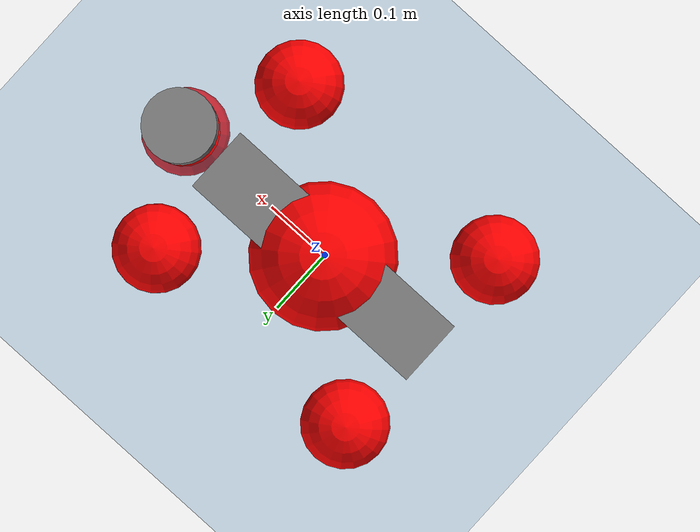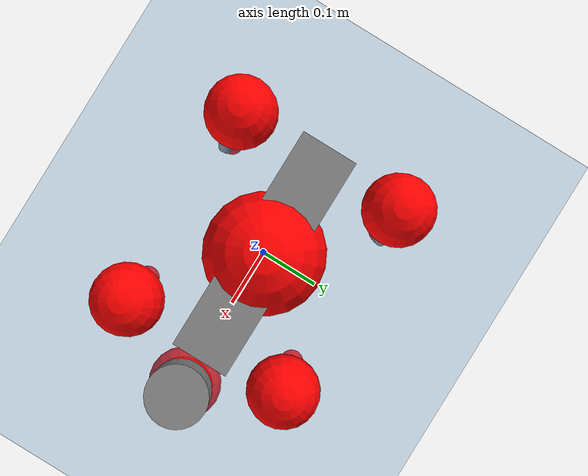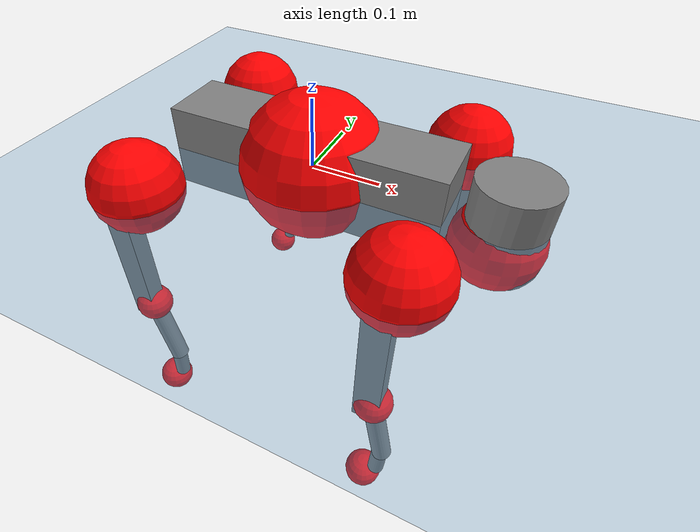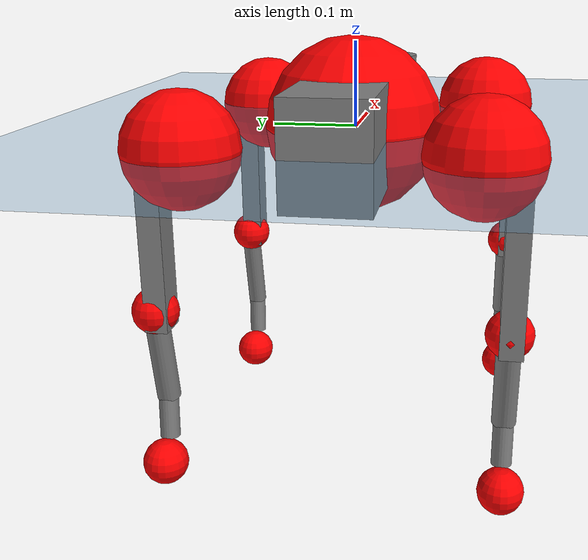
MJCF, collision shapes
<mujoco model="go2">
  <compiler angle="radian" assetdir="assets" balanceinertia="true" inertiafromgeom="false"/>

  <option timestep="0.005" density="1.2" viscosity="2e-05"/>

  <size nkey="1"/>

  <visual>
    <quality shadowsize="8192"/>
    <map shadowclip="0.5"/>
  </visual>

  <default>
    <default class="/">
      <geom contype="0" conaffinity="0" group="1" solref="-1000 -80"/>
      <site size="0.01 0.005 0.005" group="5"/>
      <general forcelimited="true" biastype="affine" gainprm="20" biasprm="0 -20 -0.5"/>
      <default class="go2">
        <joint armature="0.01" damping="0.01" frictionloss="0.2"/>
        <geom condim="1" margin="0.001"/>
        <default class="visual">
          <geom type="mesh" group="2"/>
        </default>
        <default class="collision">
          <geom group="3"/>
          <default class="foot">
            <geom size="0.022 0 0" condim="6" priority="1" friction="0.8 0.02 0.01" solimp="0.015 1 0.022"/>
          </default>
        </default>
        <default class="reward_collision_sphere">
          <geom group="5" rgba="1 0 0 1"/>
        </default>
      </default>
    </default>
  </default>

  <asset>
    <texture type="skybox" colorspace="auto" name="//unnamed_texture_0" builtin="gradient" rgb1="0.95 0.95 0.95" rgb2="0.95 0.95 0.95" width="100" height="600"/>
    <texture type="2d" colorspace="auto" name="texplane" builtin="checker" rgb1="0.345 0.575 0.748" rgb2="0.345 0.575 0.748" markrgb="1 1 1" width="512" height="512"/>
    <material name="MatPlane" class="/" texture="texplane" texuniform="true" texrepeat="2 2" specular="0.9"/>
    <material name="metal" class="/" rgba="0.9 0.95 0.95 1"/>
    <material name="black" class="/" rgba="0 0 0 1"/>
    <material name="white" class="/"/>
    <material name="gray" class="/" rgba="0.671705 0.692426 0.77427 1"/>
    <mesh name="base_0" class="/" file="base_0.obj"/>
    <mesh name="base_1" class="/" file="base_1.obj"/>
    <mesh name="base_2" class="/" file="base_2.obj"/>
    <mesh name="base_3" class="/" file="base_3.obj"/>
    <mesh name="base_4" class="/" file="base_4.obj"/>
    <mesh name="hip_0" class="/" file="hip_0.obj"/>
    <mesh name="hip_1" class="/" file="hip_1.obj"/>
    <mesh name="thigh_0" class="/" file="thigh_0.obj"/>
    <mesh name="thigh_1" class="/" file="thigh_1.obj"/>
    <mesh name="thigh_mirror_0" class="/" file="thigh_mirror_0.obj"/>
    <mesh name="thigh_mirror_1" class="/" file="thigh_mirror_1.obj"/>
    <mesh name="calf_0" class="/" file="calf_0.obj"/>
    <mesh name="calf_1" class="/" file="calf_1.obj"/>
    <mesh name="calf_mirror_0" class="/" file="calf_mirror_0.obj"/>
    <mesh name="calf_mirror_1" class="/" file="calf_mirror_1.obj"/>
    <mesh name="foot" class="/" file="foot.obj"/>
  </asset>

  <worldbody>
    <geom name="floor" class="/" size="100 100 0.125" type="plane" group="0" material="MatPlane"/>
    <light name="toplight_shadow" class="/" pos="0 0 5" dir="0.0990148 0.0990148 -0.990148" type="directional" ambient="0.04 0.04 0.04" diffuse="0.55 0.55 0.55" specular="0.12 0.12 0.12"/>
    <light name="toplight_fill" class="/" pos="0 0 5" dir="0.0990148 0.0990148 -0.990148" type="directional" castshadow="false" ambient="0.04 0.04 0.04" diffuse="0.3 0.3 0.3" specular="0.08 0.08 0.08"/>
    <body name="trunk" childclass="go2" pos="0.000728768 0.00279771 0.00187659" quat="1 4.40547e-05 1.23251e-05 5.59714e-05">
      <inertial pos="0.0214382 0.00338363 -0.0043515" quat="0.0335451 0.71275 -0.012771 0.7005" mass="8.29487" diaginertia="0.0786224 0.412356 0.0137613"/>
      <joint name="//unnamed_joint_0" type="free" armature="0" damping="0" frictionloss="0"/>
      <geom name="//unnamed_geom_1" class="visual" material="black" mesh="base_0"/>
      <geom name="//unnamed_geom_2" class="visual" material="black" mesh="base_1"/>
      <geom name="//unnamed_geom_3" class="visual" material="black" mesh="base_2"/>
      <geom name="//unnamed_geom_4" class="visual" material="white" mesh="base_3"/>
      <geom name="//unnamed_geom_5" class="visual" material="gray" mesh="base_4"/>
      <geom name="trunk_1" class="collision" size="0.198708 0.0493864 0.0602145" type="box"/>
      <geom name="trunk_2" class="collision" size="0.0528197 0.0475377" pos="0.268411 0 0.0089052" type="cylinder"/>
      <geom name="trunk_3" class="collision" size="0.0496505" pos="0.275945 0 -0.0534312"/>
      <geom name="//unnamed_geom_9" class="reward_collision_sphere" size="0.105639"/>
      <geom name="//unnamed_geom_10" class="reward_collision_sphere" size="0.0633836" pos="0.263702 0 -0.0400734"/>
      <site name="imu" pos="-0.0365614 -0.00226737 0.0516025" size="0.0105639"/>
      <camera name="track" pos="0 -2.67374 0" quat="0.707107 0.707107 0 0" mode="trackcom"/>
      <camera name="ego_camera" pos="0.293839 0 0.0400734" quat="-0.5 -0.5 0.5 0.5"/>
      <body name="FL_hip" pos="0.180658 0.0553088 -0.0050042" quat="0.999999 0.000807229 0.000651285 -0.00126817">
        <inertial pos="-0.0071404 0.00285507 -0.000313909" quat="0.49009 0.498575 0.505435 0.505737" mass="0.821684" diaginertia="0.000655434 0.00270862 0.000264199"/>
        <joint name="FL_hip_joint" pos="0 0 0" axis="0.999985 0.00319147 -0.00435809" range="-1.18901 1.04683" armature="0.00998343" damping="0.0230407" frictionloss="0.195018"/>
        <geom name="//unnamed_geom_11" class="visual" material="metal" mesh="hip_0"/>
        <geom name="//unnamed_geom_12" class="visual" material="gray" mesh="hip_1"/>
        <geom name="//unnamed_geom_13" class="collision" size="0.0485941 0.0211279" pos="0 0.10695 0" quat="0.707107 0.707107 0 0" type="cylinder"/>
        <geom name="//unnamed_geom_14" class="reward_collision_sphere" size="0.0633836" pos="0 0.0935808 0"/>
        <body name="FL_thigh" pos="0.0001989 0.120881 -0.0018263" quat="1 -0.000624154 0.000265076 0.000698089">
          <inertial pos="-0.0054516 -0.0306162 -0.0266744" quat="0.822662 0.102328 -0.0234786 0.558753" mass="1.35976" diaginertia="0.00458271 0.0252018 0.000487747"/>
          <joint name="FL_thigh_joint" pos="0 0 0" axis="0.00980737 0.999891 -0.011042" range="-1.56329 3.38539" armature="0.00877871" damping="0.0217444" frictionloss="0.225417"/>
          <geom name="//unnamed_geom_15" class="visual" material="metal" mesh="thigh_0"/>
          <geom name="//unnamed_geom_16" class="visual" material="gray" mesh="thigh_1"/>
          <geom name="//unnamed_geom_17" class="collision" size="0.112506 0.0129408 0.0179587" pos="0 0 -0.0948403" quat="0.707107 0 0.707107 0" type="box"/>
          <body name="FL_calf" pos="-0.00274096 0.00512026 -0.190891" quat="1 -2.99848e-05 2.61257e-05 2.06727e-05">
            <inertial pos="0.00458233 -0.000578402 -0.119485" quat="0.710944 0.00389002 -0.0073714 0.703199" mass="0.274333" diaginertia="0.00113016 0.005763 3.16767e-05"/>
            <joint name="FL_calf_joint" pos="0 0 0" axis="-0.000150964 1 0.000155327" range="-2.60031 -0.846566" armature="0.0111759" damping="0.0104756" frictionloss="0.216618"/>
            <geom name="//unnamed_geom_18" class="visual" material="gray" mesh="calf_0"/>
            <geom name="//unnamed_geom_19" class="visual" material="black" mesh="calf_1"/>
            <geom name="FL_calf0" class="collision" size="0.0126767 0.0633836" pos="0.00753434 0 -0.0534312" quat="0.994493 0 -0.104807 0" type="cylinder"/>
            <geom name="//unnamed_geom_21" class="collision" size="0.0116203 0.0343328" pos="0.0188359 0 -0.131797" quat="0.999688 0 0.0249974 0" type="cylinder"/>
            <geom name="//unnamed_geom_22" class="visual" pos="0 0 -0.189681" quat="1 0 0 0" material="black" mesh="foot"/>
            <geom name="FL_foot" class="foot" size="0.0209943" pos="-0.00188359 0 -0.189681"/>
            <geom name="//unnamed_geom_24" class="reward_collision_sphere" size="0.0264098"/>
            <geom name="//unnamed_geom_25" class="reward_collision_sphere" size="0.0264098" pos="-0.00188359 0 -0.189681"/>
            <site name="FL_foot" class="foot" pos="-0.00188359 0 -0.189681" size="0.0105639"/>
          </body>
        </body>
      </body>
      <body name="FR_hip" pos="0.18621 -0.0622332 0.000264668" quat="1 -0.00012142 -5.96165e-05 -8.76249e-05">
        <inertial pos="-0.00637119 -0.000304528 0.0017987" quat="0.50338 0.502288 0.496075 0.498222" mass="0.860351" diaginertia="0.000654389 0.00283426 0.000264157"/>
        <joint name="FR_hip_joint" pos="0 0 0" axis="0.999975 -0.00235084 0.00666875" range="-1.04576 1.02054" armature="0.0115603" damping="0.0150553" frictionloss="0.227351"/>
        <geom name="//unnamed_geom_26" class="visual" pos="0 3.88841e-09 1.66782e-07" quat="4.63268e-05 1 0 0" material="metal" mesh="hip_0"/>
        <geom name="//unnamed_geom_27" class="visual" pos="0 6.30358e-09 -4.12516e-07" quat="4.63268e-05 1 0 0" material="gray" mesh="hip_1"/>
        <geom name="//unnamed_geom_28" class="collision" size="0.0485941 0.0211279" pos="0 -0.10695 0" quat="0.707107 0.707107 0 0" type="cylinder"/>
        <geom name="//unnamed_geom_29" class="reward_collision_sphere" size="0.0633836" pos="0 -0.0935808 0"/>
        <body name="FR_thigh" pos="-0.00539169 -0.134366 -0.00676726" quat="1 -2.58711e-06 0.000174746 -2.87237e-05">
          <inertial pos="-0.00423259 0.0363602 -0.0304059" quat="0.551663 -0.0162448 0.0860518 0.829457" mass="1.2656" diaginertia="0.00430459 0.023895 0.000463152"/>
          <joint name="FR_thigh_joint" pos="0 0 0" axis="0.0094803 -0.999952 0.00266149" range="-3.3808 1.57373" armature="0.0116362" damping="0.0204786" frictionloss="0.210464"/>
          <geom name="//unnamed_geom_30" class="visual" material="metal" mesh="thigh_mirror_0"/>
          <geom name="//unnamed_geom_31" class="visual" material="gray" mesh="thigh_mirror_1"/>
          <geom name="//unnamed_geom_32" class="collision" size="0.112506 0.0129408 0.0179587" pos="0 0 -0.0948403" quat="0.707107 0 0.707107 0" type="box"/>
          <body name="FR_calf" pos="0.00531541 0.00149669 -0.188476" quat="0.999998 -0.000519855 -0.000657715 0.00184491">
            <inertial pos="0.00718334 0.000968426 -0.127659" quat="0.7038 -0.00846006 0.00402705 0.710336" mass="0.29226" diaginertia="0.00114014 0.0062177 3.05391e-05"/>
            <joint name="FR_calf_joint" pos="0 0 0" axis="0.0158209 -0.999507 -0.027106" stiffness="0.0102813" range="0.885823 2.73896" armature="0.00799181" damping="0" frictionloss="0.252524"/>
            <geom name="//unnamed_geom_33" class="visual" material="gray" mesh="calf_mirror_0"/>
            <geom name="//unnamed_geom_34" class="visual" material="black" mesh="calf_mirror_1"/>
            <geom name="FR_calf0" class="collision" size="0.0137331 0.0633836" pos="0.00941793 0 -0.0534312" quat="0.995004 0 -0.0998334 0" type="cylinder"/>
            <geom name="//unnamed_geom_36" class="collision" size="0.0116203 0.0343328" pos="0.0188359 0 -0.131797" quat="0.999688 0 0.0249974 0" type="cylinder"/>
            <geom name="//unnamed_geom_37" class="visual" pos="0 0 -0.189681" quat="1 0 0 0" material="black" mesh="foot"/>
            <geom name="FR_foot" class="foot" size="0.0219772" pos="-0.00188359 0 -0.189681"/>
            <geom name="//unnamed_geom_39" class="reward_collision_sphere" size="0.0264098"/>
            <geom name="//unnamed_geom_40" class="reward_collision_sphere" size="0.0264098" pos="-0.00188359 0 -0.189681"/>
            <site name="FR_foot" class="foot" pos="-0.00188359 0 -0.189681" size="0.0105639"/>
          </body>
        </body>
      </body>
      <body name="RL_hip" pos="-0.180344 0.0600696 0.00127123" quat="1 0.000431065 -0.000125679 0.000370293">
        <inertial pos="0.00428564 0.00605083 -0.000480311" quat="0.508694 0.497862 0.501818 0.491471" mass="0.827941" diaginertia="0.000656401 0.00258242 0.000273988"/>
        <joint name="RL_hip_joint" pos="0 0 0" axis="-0.999998 0.00208922 4.87873e-05" range="-1.00198 1.02795" armature="0.0101632" damping="0.00638001" frictionloss="0.236271"/>
        <geom name="//unnamed_geom_41" class="visual" pos="-4.46674e-10 0 -8.75583e-08" quat="4.63268e-05 0 1 0" material="metal" mesh="hip_0"/>
        <geom name="//unnamed_geom_42" class="visual" pos="-7.24111e-10 0 -7.76517e-08" quat="4.63268e-05 0 1 0" material="gray" mesh="hip_1"/>
        <geom name="//unnamed_geom_43" class="collision" size="0.0485941 0.0211279" pos="0 0.10695 0" quat="0.707107 0.707107 0 0" type="cylinder"/>
        <geom name="//unnamed_geom_44" class="reward_collision_sphere" size="0.0633836" pos="0 0.0935808 0"/>
        <body name="RL_thigh" pos="0.00128367 0.12829 0.00592632" quat="0.999999 0.000908677 4.12327e-05 -0.00079477">
          <inertial pos="-0.00401343 -0.0316568 -0.0236377" quat="0.829008 0.0876218 -0.0198599 0.551973" mass="1.26131" diaginertia="0.00436392 0.0256556 0.000488563"/>
          <joint name="RL_thigh_joint" pos="0 0 0" axis="-0.0223966 0.99971 0.00884361" range="-0.468879 4.51924" armature="0.00996832" damping="0.0243991" frictionloss="0.191563"/>
          <geom name="//unnamed_geom_45" class="visual" material="metal" mesh="thigh_0"/>
          <geom name="//unnamed_geom_46" class="visual" material="gray" mesh="thigh_1"/>
          <geom name="//unnamed_geom_47" class="collision" size="0.112506 0.0129408 0.0179587" pos="0 0 -0.0948403" quat="0.707107 0 0.707107 0" type="box"/>
          <body name="RL_calf" pos="0.00221317 0.00677 -0.188918" quat="0.999999 0.000302121 0.000915712 -0.00029664">
            <inertial pos="0.00400266 -0.00135816 -0.128257" quat="0.714598 0.00192011 -0.00730026 0.699494" mass="0.278424" diaginertia="0.00103606 0.00608672 2.93016e-05"/>
            <joint name="RL_calf_joint" pos="0 0 0" axis="-0.00304168 0.999945 0.0100029" range="-2.85043 -0.785244" armature="0.0107694" damping="0.0144055" frictionloss="0.211866"/>
            <geom name="//unnamed_geom_48" class="visual" material="gray" mesh="calf_0"/>
            <geom name="//unnamed_geom_49" class="visual" material="black" mesh="calf_1"/>
            <geom name="RL_calf0" class="collision" size="0.0137331 0.0633836" pos="0.00941793 0 -0.0534312" quat="0.995004 0 -0.0998334 0" type="cylinder"/>
            <geom name="//unnamed_geom_51" class="collision" size="0.0116203 0.0343328" pos="0.0188359 0 -0.131797" quat="0.999688 0 0.0249974 0" type="cylinder"/>
            <geom name="//unnamed_geom_52" class="visual" pos="0 0 -0.189681" quat="1 0 0 0" material="black" mesh="foot"/>
            <geom name="RL_foot" class="foot" size="0.022993" pos="-0.00188359 0 -0.189681"/>
            <geom name="//unnamed_geom_54" class="reward_collision_sphere" size="0.0264098"/>
            <geom name="//unnamed_geom_55" class="reward_collision_sphere" size="0.0264098" pos="-0.00188359 0 -0.189681"/>
            <site name="RL_foot" class="foot" pos="-0.00188359 0 -0.189681" size="0.0105639"/>
          </body>
        </body>
      </body>
      <body name="RR_hip" pos="-0.180816 -0.0639797 0.00295352" quat="0.999998 0.000368151 -4.88938e-05 -0.0019569">
        <inertial pos="0.00700503 -0.0063817 0.00124378" quat="0.507509 0.496748 0.497319 0.498346" mass="0.804716" diaginertia="0.000630215 0.00257057 0.000250058"/>
        <joint name="RR_hip_joint" pos="0 0 0" axis="-0.999731 -0.0200921 0.0115851" stiffness="0.00103937" range="-1.09251 1.14714" armature="0.0103777" damping="0.00704303" frictionloss="0.232825"/>
        <geom name="//unnamed_geom_56" class="visual" pos="4.60351e-10 3.88841e-09 -2.5434e-07" quat="2.14617e-09 4.63268e-05 4.63268e-05 -1" material="metal" mesh="hip_0"/>
        <geom name="//unnamed_geom_57" class="visual" pos="6.90281e-10 6.30358e-09 3.34864e-07" quat="2.14617e-09 4.63268e-05 4.63268e-05 -1" material="gray" mesh="hip_1"/>
        <geom name="//unnamed_geom_58" class="collision" size="0.0485941 0.0211279" pos="0 -0.10695 0" quat="0.707107 0.707107 0 0" type="cylinder"/>
        <geom name="//unnamed_geom_59" class="reward_collision_sphere" size="0.0633836" pos="0 -0.0935808 0"/>
        <body name="RR_thigh" pos="-0.000307947 -0.129901 -0.00148866" quat="0.999998 0.000604761 -0.00172566 0.00122">
          <inertial pos="-0.00303673 0.0346254 -0.0299349" quat="0.545019 -0.0275848 0.0890135 0.833229" mass="1.39058" diaginertia="0.00455115 0.0253997 0.000495386"/>
          <joint name="RR_thigh_joint" pos="0 0 0" axis="0.00342631 -0.999536 -0.0302697" range="-4.49225 0.516625" armature="0.00995489" damping="0.0178378" frictionloss="0.236175"/>
          <geom name="//unnamed_geom_60" class="visual" material="metal" mesh="thigh_mirror_0"/>
          <geom name="//unnamed_geom_61" class="visual" material="gray" mesh="thigh_mirror_1"/>
          <geom name="//unnamed_geom_62" class="collision" size="0.112506 0.0129408 0.0179587" pos="0 0 -0.0948403" quat="0.707107 0 0.707107 0" type="box"/>
          <body name="RR_calf" pos="0.00773311 0.00164726 -0.188677" quat="1 6.23105e-05 0.00018148 8.99295e-05">
            <inertial pos="-0.00124787 0.00107029 -0.128124" quat="0.699508 -0.00715382 0.000706468 0.714589" mass="0.278673" diaginertia="0.00103408 0.00608719 3.05641e-05"/>
            <joint name="RR_calf_joint" pos="0 0 0" axis="-0.028919 -0.999545 0.0085309" stiffness="0.00274665" range="0.907899 2.61951" armature="0.0131929" damping="0" frictionloss="0.207509"/>
            <geom name="//unnamed_geom_63" class="visual" material="gray" mesh="calf_mirror_0"/>
            <geom name="//unnamed_geom_64" class="visual" material="black" mesh="calf_mirror_1"/>
            <geom name="RR_calf0" class="collision" size="0.0137331 0.0633836" pos="0.00941793 0 -0.0534312" quat="0.995004 0 -0.0998334 0" type="cylinder"/>
            <geom name="//unnamed_geom_66" class="collision" size="0.0116203 0.0343328" pos="0.0188359 0 -0.131797" quat="0.999688 0 0.0249974 0" type="cylinder"/>
            <geom name="//unnamed_geom_67" class="visual" pos="0 0 -0.189681" quat="1 0 0 0" material="black" mesh="foot"/>
            <geom name="RR_foot" class="foot" size="0.0240266" pos="-0.00188359 0 -0.189681"/>
            <geom name="//unnamed_geom_69" class="reward_collision_sphere" size="0.0264098"/>
            <geom name="//unnamed_geom_70" class="reward_collision_sphere" size="0.0264098" pos="-0.00188359 0 -0.189681"/>
            <site name="RR_foot" class="foot" pos="-0.00188359 0 -0.189681" size="0.0105639"/>
          </body>
        </body>
      </body>
    </body>
  </worldbody>

  <contact>
    <pair class="/" geom1="floor" geom2="FL_foot" name="//unnamed_contact_0"/>
    <pair class="/" geom1="floor" geom2="FR_foot" name="//unnamed_contact_1"/>
    <pair class="/" geom1="floor" geom2="RL_foot" name="//unnamed_contact_2"/>
    <pair class="/" geom1="floor" geom2="RR_foot" name="//unnamed_contact_3"/>
  </contact>

  <actuator>
    <general name="FL_hip" class="/" joint="FL_hip_joint" forcerange="-18.5586 18.5586" gainprm="18.341" biasprm="0 -18.341 -0.548944"/>
    <general name="FL_thigh" class="/" joint="FL_thigh_joint" forcerange="-26.445 26.445" gainprm="18.341" biasprm="0 -18.341 -0.548944"/>
    <general name="FL_calf" class="/" joint="FL_calf_joint" forcerange="-44.5665 44.5665" gainprm="18.341" biasprm="0 -18.341 -0.548944"/>
    <general name="FR_hip" class="/" joint="FR_hip_joint" forcerange="-20.0009 20.0009" gainprm="18.341" biasprm="0 -18.341 -0.548944"/>
    <general name="FR_thigh" class="/" joint="FR_thigh_joint" forcerange="-19.9636 19.9636" gainprm="18.341" biasprm="0 -18.341 -0.548944"/>
    <general name="FR_calf" class="/" joint="FR_calf_joint" forcerange="-45.0779 45.0779" gainprm="18.341" biasprm="0 -18.341 -0.548944"/>
    <general name="RL_hip" class="/" joint="RL_hip_joint" forcerange="-22.9257 22.9257" gainprm="18.341" biasprm="0 -18.341 -0.548944"/>
    <general name="RL_thigh" class="/" joint="RL_thigh_joint" forcerange="-27.3493 27.3493" gainprm="18.341" biasprm="0 -18.341 -0.548944"/>
    <general name="RL_calf" class="/" joint="RL_calf_joint" forcerange="-49.0272 49.0272" gainprm="18.341" biasprm="0 -18.341 -0.548944"/>
    <general name="RR_hip" class="/" joint="RR_hip_joint" forcerange="-30.775 30.775" gainprm="18.341" biasprm="0 -18.341 -0.548944"/>
    <general name="RR_thigh" class="/" joint="RR_thigh_joint" forcerange="-22.9677 22.9677" gainprm="18.341" biasprm="0 -18.341 -0.548944"/>
    <general name="RR_calf" class="/" joint="RR_calf_joint" forcerange="-46.6193 46.6193" gainprm="18.341" biasprm="0 -18.341 -0.548944"/>
  </actuator>

  <sensor>
    <gyro site="imu" name="imu_angular_velocity"/>
    <velocimeter site="imu" name="imu_linear_velocity"/>
    <framelinvel objtype="site" objname="FL_foot" name="FL_foot_global_linear_velocity"/>
    <framelinvel objtype="site" objname="FR_foot" name="FR_foot_global_linear_velocity"/>
    <framelinvel objtype="site" objname="RL_foot" name="RL_foot_global_linear_velocity"/>
    <framelinvel objtype="site" objname="RR_foot" name="RR_foot_global_linear_velocity"/>
  </sensor>

  <keyframe>
    <key name="home" qpos="0 0 0.325 1 0 0 0 0.1 0.8 -1.5 -0.1 -0.8 1.5 -0.1 0.8 -1.5 0.1 -0.8 1.5"/>
  </keyframe>
</mujoco>
